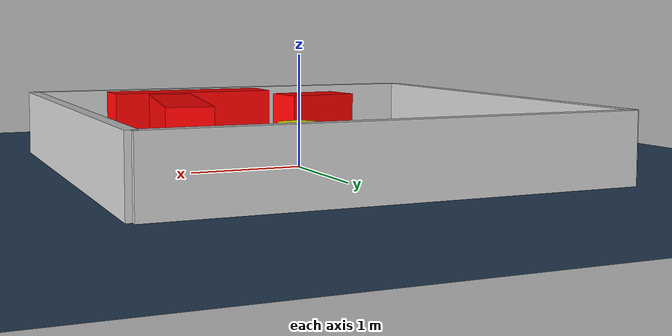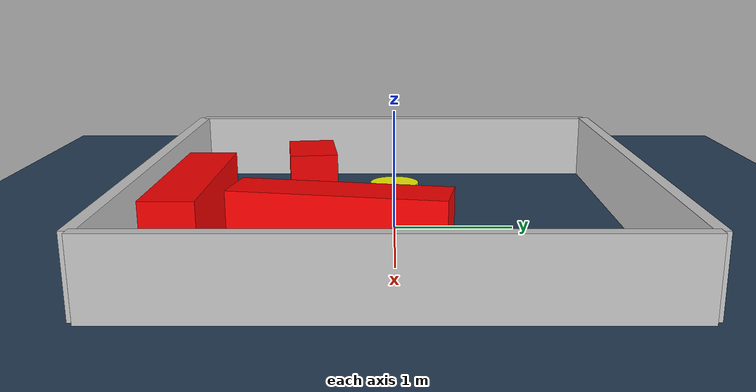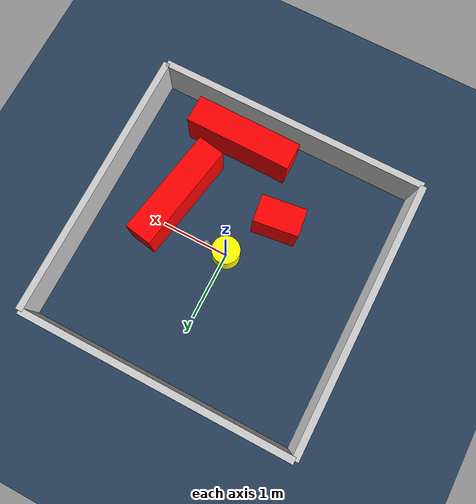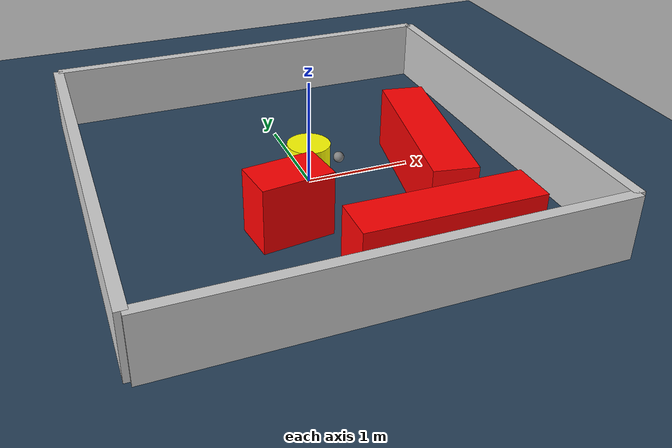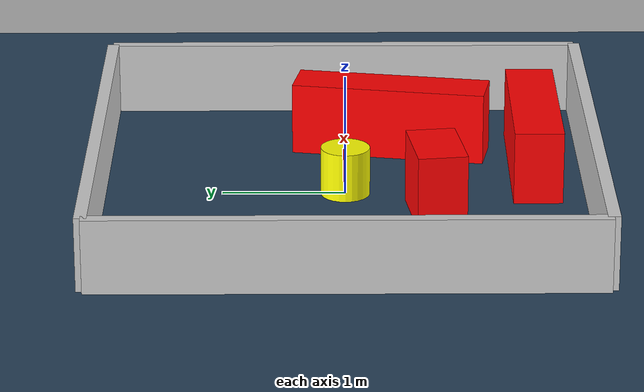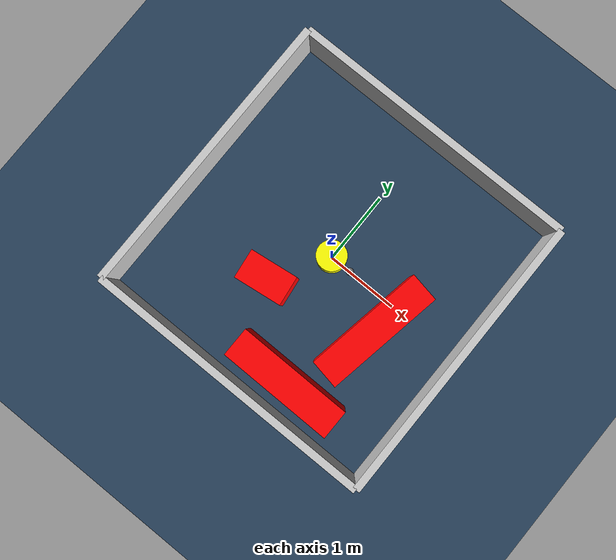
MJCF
<?xml version="1.0" ?>
<mujoco model="generated_environment">
  <option timestep="0.01" integrator="RK4" cone="elliptic"/>
  <default>
    <geom density="1"/>
  </default>
  <asset>
    <texture builtin="gradient" height="3072" rgb1="0.3 0.5 0.7" rgb2="0 0 0" type="skybox" width="512"/>
    <texture builtin="checker" height="300" mark="edge" markrgb="0.8 0.8 0.8" name="groundplane" rgb1="0.2 0.3 0.4" rgb2="0.1 0.2 0.3" type="2d" width="300"/>
    <material name="groundplane" reflectance="0.2" texrepeat="5 5" texture="groundplane" texuniform="true"/>
    <material name="robot" rgba="0.0 1.0 0.0 1"/>
  </asset>
  <worldbody>
    <light dir="0 0 -1" directional="true" pos="0 0 1.5"/>
    <geom condim="4" friction="1.0 0.005 0.001" material="groundplane" name="floor" size="0 0 0.05" type="plane"/>
    <body name="walls">
      <geom name="wall_1" condim="4" pos="-2.0 0.0 0.3" rgba="0.800000011920929 0.800000011920929 0.800000011920929 1.0" size="0.05 2.0 0.3" type="box"/>
      <geom name="wall_2" condim="4" pos="2.0 0.0 0.3" rgba="0.800000011920929 0.800000011920929 0.800000011920929 1.0" size="0.05 2.0 0.3" type="box"/>
      <geom name="wall_3" condim="4" pos="0.0 -2.0 0.3" rgba="0.800000011920929 0.800000011920929 0.800000011920929 1.0" size="2.0 0.05 0.3" type="box"/>
      <geom name="wall_4" condim="4" pos="0.0 2.0 0.3" rgba="0.800000011920929 0.800000011920929 0.800000011920929 1.0" size="2.0 0.05 0.3" type="box"/>
    </body>
    <body name="robot">
      <joint name="joint_x" type="slide" pos="0 0 0" axis="1 0 0"/>
      <joint name="joint_y" type="slide" pos="0 0 0" axis="0 1 0"/>
      <geom name="robot" type="sphere" pos="0.3 0.0 0.2" size="0.05" mass="5." friction="1.0 0.005 0.0001" condim="4" rgba="0.5 0.5 0.5 1.0"/>
      <site name="sensor_ball"/>
    </body>
    <body name="obstacle_movable_1">
      <geom name="obstacle_movable_1" condim="4" pos="0.0 0.0 0.2" euler="0 0 0.0" friction="1.0 0.005 0.001" rgba="1.0 1.0 0.0 1.0" size="0.2 0.2 0.0" type="cylinder" mass="0.1"/>
      <joint type="free"/>
    </body>
    <body name="obstacle_2_static">
      <geom name="obstacle_2_static" condim="4" pos="0.9869026293507839 -0.39099085989266813 0.3" euler="0 0 79.87081888503572" friction="1.0 0.005 0.001" rgba="1 0 0 1" size="0.8071636306081851 0.2 0.3" type="box"/>
    </body>
    <body name="obstacle_3_static">
      <geom name="obstacle_3_static" condim="4" pos="-0.4457667442003672 -0.7235803130667562 0.3" euler="0 0 187.4470535898127" friction="1.0 0.005 0.001" rgba="1 0 0 1" size="0.3255583905939028 0.2 0.3" type="box"/>
    </body>
    <body name="obstacle_4_static">
      <geom name="obstacle_4_static" condim="4" pos="0.5443862199201372 -1.5635118533199792 0.3" euler="0 0 359.6117645293545" friction="1.0 0.005 0.001" rgba="1 0 0 1" size="0.7829864870241254 0.2 0.3" type="box"/>
    </body>
  </worldbody>
  <actuator>
    <motor name="actuator_x" joint="joint_x" gear="1" ctrlrange="-1 1"/>
    <motor name="actuator_y" joint="joint_y" gear="1" ctrlrange="-1 1"/>
  </actuator>
</mujoco>
